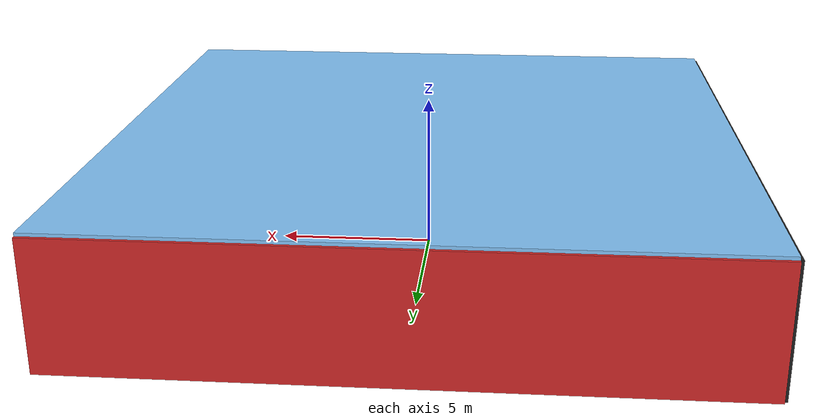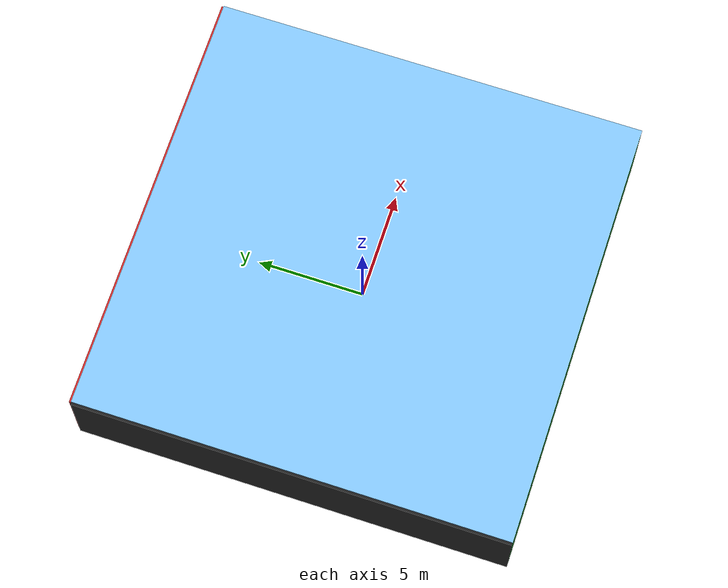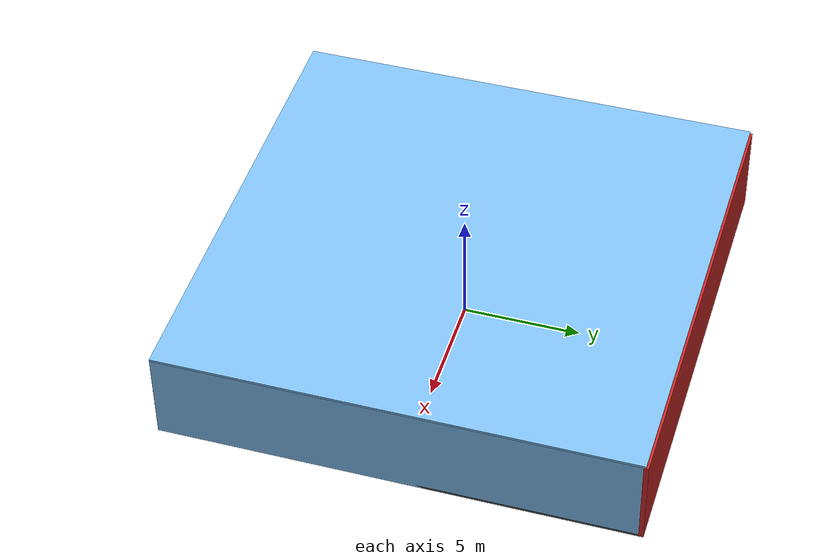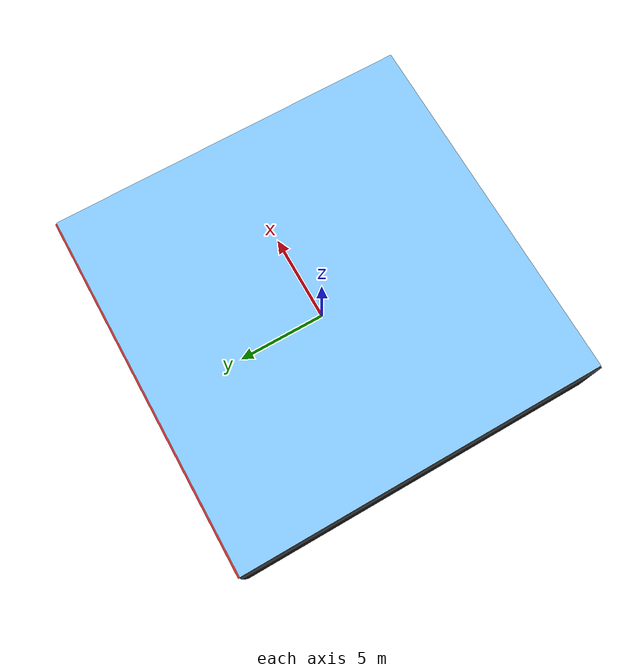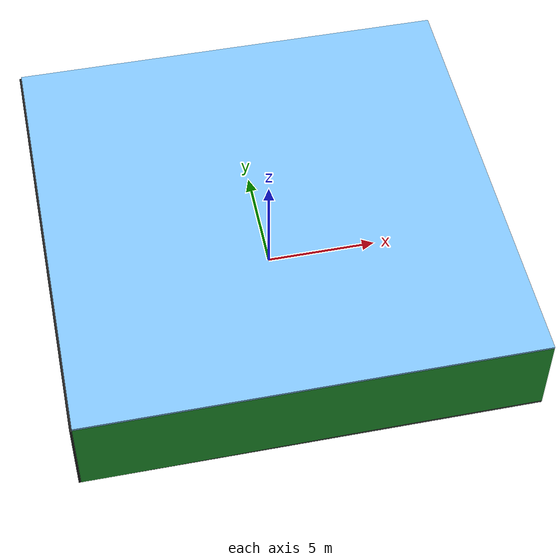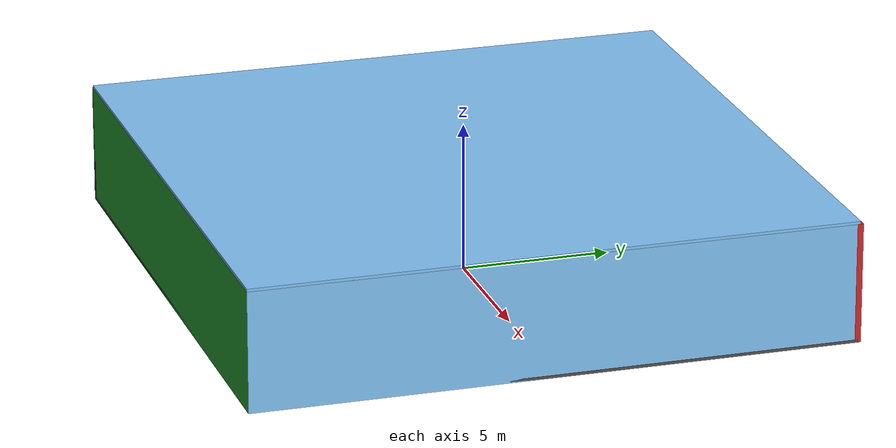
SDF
<sdf version="1.4">
 <world name="default">
  <physics type="ode">
   <max_step_size>0.001</max_step_size>
   <real_time_factor>1</real_time_factor>
   <real_time_update_rate>1000</real_time_update_rate>
   <gravity>0 0 -9.8</gravity>
  </physics>
  <scene><ambient>0.4 0.4 0.4 1</ambient><background>0.7 0.7 0.7 1</background><shadows>1</shadows></scene>
  <model name="Surrounding">
   <static>1</static>
   <link name="Ceiling">
    <collision name="Ceiling_Collision"><geometry><box><size>20 20 0.1</size></box></geometry></collision>
    <visual name="Ceiling_Visual">
     <geometry><box><size>20 20 0.1</size></box></geometry>
     <material>
      <script><uri>file://media/materials/scripts/gazebo.material</uri><name>Gazebo/SkyBlue</name></script>
     </material>
    </visual>
    <pose>0 0 4.05 0 0 0</pose>
   </link>
   <link name="Wall_South">
    <collision name="Wall_South_Collision">
     <geometry><box><size>20 0 4</size></box></geometry>
     <pose>0 0 2 0 -0 0</pose>
    </collision>
    <visual name="Wall_South_Visual">
     <pose>0 0 2 0 -0 0</pose>
     <geometry><box><size>20 0 4</size></box></geometry>
     <material>
      <script><uri>file://media/materials/scripts/gazebo.material</uri><name>Gazebo/GreenGlow</name></script>
     </material>
    </visual>
    <velocity_decay><linear>0</linear><angular>0</angular></velocity_decay>
    <pose>0 -10 0 0 -0 0</pose>
   </link>
   <link name="Wall_East">
    <collision name="Wall_21_Collision">
     <geometry><box><size>20 0 4</size></box></geometry>
     <pose>0 0 2 0 -0 0</pose>
    </collision>
    <visual name="Wall_21_Visual">
     <pose>0 0 2 0 -0 0</pose>
     <geometry><box><size>20 0 4</size></box></geometry>
     <material>
      <script><uri>file://media/materials/scripts/gazebo.material</uri><name>Gazebo/SkyBlue</name></script>
     </material>
    </visual>
    <velocity_decay><linear>0</linear><angular>0</angular></velocity_decay>
    <pose>10 0 0 0 -0 1.5708</pose>
   </link>
   <link name="Wall_North">
    <collision name="Wall_22_Collision">
     <geometry><box><size>20 0.2 4</size></box></geometry>
     <pose>0 0 2 0 -0 0</pose>
    </collision>
    <visual name="Wall_22_Visual">
     <pose>0 0 2 0 -0 0</pose>
     <geometry><box><size>20 0.2 4</size></box></geometry>
     <material>
      <script><uri>file://media/materials/scripts/gazebo.material</uri><name>Gazebo/RedBright</name></script>
     </material>
    </visual>
    <velocity_decay><linear>0</linear><angular>0</angular></velocity_decay>
    <pose>0 10 0 0 -0 0</pose>
   </link>
   <link name="Wall_West">
    <collision name="Wall_23_Collision">
     <geometry><box><size>20 0.2 4</size></box></geometry>
     <pose>0 0 2 0 -0 0</pose>
    </collision>
    <visual name="Wall_23_Visual">
     <pose>0 0 2 0 -0 0</pose>
     <geometry><box><size>20 0.2 4</size></box></geometry>
     <material>
      <script><uri>file://media/materials/scripts/gazebo.material</uri><name>Gazebo/Black</name></script>
     </material>
    </visual>
    <velocity_decay><linear>0</linear><angular>0</angular></velocity_decay>
    <pose>-10 0 0 0 0 -1.5708</pose>
   </link>
   <link name="Ground_link">
    <collision name="collision">
     <pose>0 0 .05 0 -0 0</pose>
     <geometry><box><size>20 20 0.1</size></box></geometry>
    </collision>
    <visual name="visual">
     <pose>0 0 .05 0 -0 0</pose>
     <geometry><box><size>20 20 0.1</size></box></geometry>
     <material>
      <script><uri>file://media/materials/scripts/gazebo.material</uri><name>Gazebo/Road</name></script>
     </material>
    </visual>
   </link>
   <static>1</static>
  </model>
  <spherical_coordinates>
   <surface_model>EARTH_WGS84</surface_model>
   <latitude_deg>0</latitude_deg>
   <longitude_deg>0</longitude_deg>
   <elevation>0</elevation>
   <heading_deg>0</heading_deg>
  </spherical_coordinates>
  <light name="lightball_0" type="diffuse">
   <diffuse>0.8 0.8 0.8 1</diffuse>
   <specular>0.2 0.2 0.2 1</specular>
   <attenuation>
    <range>100</range>
    <constant>0.7</constant>
    <linear>0.01</linear>
    <quadratic>0.001</quadratic>
   </attenuation>
   <direction>-0.5 0.1 -0.9</direction>
   <pose>8.66477757867 4.49002189806 1.59334359752 0 0 0</pose>
  </light>
  <light name="lightball_1" type="diffuse">
   <diffuse>0.8 0.8 0.8 1</diffuse>
   <specular>0.2 0.2 0.2 1</specular>
   <attenuation>
    <range>100</range>
    <constant>0.7</constant>
    <linear>0.01</linear>
    <quadratic>0.001</quadratic>
   </attenuation>
   <direction>-0.5 0.1 -0.9</direction>
   <pose>-8.80128884015 -2.60408792944 1.3949510449 0 0 0</pose>
  </light>
  <light name="lightball_2" type="diffuse">
   <diffuse>0.8 0.8 0.8 1</diffuse>
   <specular>0.2 0.2 0.2 1</specular>
   <attenuation>
    <range>100</range>
    <constant>0.7</constant>
    <linear>0.01</linear>
    <quadratic>0.001</quadratic>
   </attenuation>
   <direction>-0.5 0.1 -0.9</direction>
   <pose>0.635002847002 -3.58619692676 3.77834977513 0 0 0</pose>
  </light>
  <light name="lightball_3" type="diffuse">
   <diffuse>0.8 0.8 0.8 1</diffuse>
   <specular>0.2 0.2 0.2 1</specular>
   <attenuation>
    <range>100</range>
    <constant>0.7</constant>
    <linear>0.01</linear>
    <quadratic>0.001</quadratic>
   </attenuation>
   <direction>-0.5 0.1 -0.9</direction>
   <pose>8.47982866865 -1.56188415961 2.67949366813 0 0 0</pose>
  </light>
  <light name="lightball_4" type="diffuse">
   <diffuse>0.8 0.8 0.8 1</diffuse>
   <specular>0.2 0.2 0.2 1</specular>
   <attenuation>
    <range>100</range>
    <constant>0.7</constant>
    <linear>0.01</linear>
    <quadratic>0.001</quadratic>
   </attenuation>
   <direction>-0.5 0.1 -0.9</direction>
   <pose>3.97777497971 1.67898152116 3.58629596635 0 0 0</pose>
  </light>
  <light name="lightball_5" type="diffuse">
   <diffuse>0.8 0.8 0.8 1</diffuse>
   <specular>0.2 0.2 0.2 1</specular>
   <attenuation>
    <range>100</range>
    <constant>0.7</constant>
    <linear>0.01</linear>
    <quadratic>0.001</quadratic>
   </attenuation>
   <direction>-0.5 0.1 -0.9</direction>
   <pose>2.31138810617 6.59077415532 0.84189235493 0 0 0</pose>
  </light>
  <light name="lightball_6" type="diffuse">
   <diffuse>0.8 0.8 0.8 1</diffuse>
   <specular>0.2 0.2 0.2 1</specular>
   <attenuation>
    <range>100</range>
    <constant>0.7</constant>
    <linear>0.01</linear>
    <quadratic>0.001</quadratic>
   </attenuation>
   <direction>-0.5 0.1 -0.9</direction>
   <pose>-5.28440467152 -4.86841858701 1.4087491817 0 0 0</pose>
  </light>
  <light name="lightball_7" type="diffuse">
   <diffuse>0.8 0.8 0.8 1</diffuse>
   <specular>0.2 0.2 0.2 1</specular>
   <attenuation>
    <range>100</range>
    <constant>0.7</constant>
    <linear>0.01</linear>
    <quadratic>0.001</quadratic>
   </attenuation>
   <direction>-0.5 0.1 -0.9</direction>
   <pose>-9.65919451859 4.09240532441 2.31749355051 0 0 0</pose>
  </light>
  <light name="lightball_8" type="diffuse">
   <diffuse>0.8 0.8 0.8 1</diffuse>
   <specular>0.2 0.2 0.2 1</specular>
   <attenuation>
    <range>100</range>
    <constant>0.7</constant>
    <linear>0.01</linear>
    <quadratic>0.001</quadratic>
   </attenuation>
   <direction>-0.5 0.1 -0.9</direction>
   <pose>3.87734977742 3.13683287909 1.821697488 0 0 0</pose>
  </light>
  <light name="lightball_9" type="diffuse">
   <diffuse>0.8 0.8 0.8 1</diffuse>
   <specular>0.2 0.2 0.2 1</specular>
   <attenuation>
    <range>100</range>
    <constant>0.7</constant>
    <linear>0.01</linear>
    <quadratic>0.001</quadratic>
   </attenuation>
   <direction>-0.5 0.1 -0.9</direction>
   <pose>-0.314725952803 -5.16663846997 1.83191932812 0 0 0</pose>
  </light>
  <light name="lightball_10" type="diffuse">
   <diffuse>0.8 0.8 0.8 1</diffuse>
   <specular>0.2 0.2 0.2 1</specular>
   <attenuation>
    <range>100</range>
    <constant>0.7</constant>
    <linear>0.01</linear>
    <quadratic>0.001</quadratic>
   </attenuation>
   <direction>-0.5 0.1 -0.9</direction>
   <pose>-9.23263662498 7.54810407807 1.6139399122 0 0 0</pose>
  </light>
  <light name="lightball_11" type="diffuse">
   <diffuse>0.8 0.8 0.8 1</diffuse>
   <specular>0.2 0.2 0.2 1</specular>
   <attenuation>
    <range>100</range>
    <constant>0.7</constant>
    <linear>0.01</linear>
    <quadratic>0.001</quadratic>
   </attenuation>
   <direction>-0.5 0.1 -0.9</direction>
   <pose>-9.9096915602 -1.93758468676 1.50700799879 0 0 0</pose>
  </light>
  <light name="lightball_12" type="diffuse">
   <diffuse>0.8 0.8 0.8 1</diffuse>
   <specular>0.2 0.2 0.2 1</specular>
   <attenuation>
    <range>100</range>
    <constant>0.7</constant>
    <linear>0.01</linear>
    <quadratic>0.001</quadratic>
   </attenuation>
   <direction>-0.5 0.1 -0.9</direction>
   <pose>1.51515184141 3.31972786706 2.94860703997 0 0 0</pose>
  </light>
  <include><uri>model://cabinet</uri><pose>-6.73527787504 -3.53269835658 0 0 0 0.973799366609</pose></include>
  <include>
   <uri>model://textured_shapes</uri>
   <pose>-4.5656708847 -1.03813384997 0 0 0 1.4242244781</pose>
  </include>
  <include>
   <uri>model://robocup_3Dsim_goal</uri>
   <pose>6.37877300115 -6.82722263219 0 0 0 0.462457481492</pose>
  </include>
 </world>
</sdf>

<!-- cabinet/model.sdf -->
<sdf version="1.5">
  <model name="cabinet">
    <static>true</static>
    <link name="cabinet_bottom_plate">
      <inertial>
        <pose>0 0 -1 0 0 0</pose>
        <inertia>
          <ixx>2.050000</ixx>
          <ixy>0</ixy>
          <ixz>0</ixz>
          <iyy>2.050000</iyy>
          <iyz>0</iyz>
          <izz>2.050000</izz>
        </inertia>
        <mass>25.000000</mass>
      </inertial>
      <collision name="cabinet_bottom_plate_geom">
        <pose>0 0 0.010000 0 0 0</pose>
        <geometry>
          <box>
            <size>0.450000 0.450000 0.020000</size>
          </box>
        </geometry>
      </collision>
      <visual name="cabinet_bottom_plate_geom_visual">
        <pose>0 0 0.010000 0 0 0</pose>
        <geometry>
          <box>
            <size>0.450000 0.450000 0.020000</size>
          </box>
        </geometry>
        <material>
          <script>
            <uri>model://media/materials/scripts/gazebo.material</uri>
            <name>Gazebo/Wood</name>
          </script>
        </material>
      </visual>
      <collision name="cabinet_bottom_plate_geom_cabinet_back_plate">
        <pose>0.235000 0 0.510000 0 0 0</pose>
        <geometry>
          <box>
            <size>0.020000 0.450000 1.020000</size>
          </box>
        </geometry>
      </collision>
      <visual name="cabinet_bottom_plate_geom_cabinet_back_plate_visual">
        <pose>0.235000 0 0.510000 0 0 0</pose>
        <geometry>
          <box>
            <size>0.020000 0.450000 1.020000</size>
          </box>
        </geometry>
        <material>
          <script>
            <uri>model://media/materials/scripts/gazebo.material</uri>
            <name>Gazebo/Wood</name>
          </script>
        </material>
      </visual>
      <collision name="cabinet_bottom_plate_geom_cabinet_left_plate">
        <pose>0 0.235000 0.510000 0 0 0</pose>
        <geometry>
          <box>
            <size>0.450000 0.020000 1.020000</size>
          </box>
        </geometry>
      </collision>
      <visual name="cabinet_bottom_plate_geom_cabinet_left_plate_visual">
        <pose>0 0.235000 0.510000 0 0 0</pose>
        <geometry>
          <box>
            <size>0.450000 0.020000 1.020000</size>
          </box>
        </geometry>
        <material>
          <script>
            <uri>model://media/materials/scripts/gazebo.material</uri>
            <name>Gazebo/Wood</name>
          </script>
        </material>
      </visual>
      <collision name="cabinet_bottom_plate_geom_cabinet_middle_plate">
        <pose>0 0 0.510000 0 0 0</pose>
        <geometry>
          <box>
            <size>0.450000 0.450000 0.020000</size>
          </box>
        </geometry>
      </collision>
      <visual name="cabinet_bottom_plate_geom_cabinet_middle_plate_visual">
        <pose>0 0 0.510000 0 0 0</pose>
        <geometry>
          <box>
            <size>0.450000 0.450000 0.020000</size>
          </box>
        </geometry>
        <material>
          <script>
            <uri>model://media/materials/scripts/gazebo.material</uri>
            <name>Gazebo/Wood</name>
          </script>
        </material>
      </visual>
      <collision name="cabinet_bottom_plate_geom_cabinet_right_plate">
        <pose>0 -0.235000 0.510000 0 0 0</pose>
        <geometry>
          <box>
            <size>0.450000 0.020000 1.020000</size>
          </box>
        </geometry>
      </collision>
      <visual name="cabinet_bottom_plate_geom_cabinet_right_plate_visual">
        <pose>0 -0.235000 0.510000 0 0 0</pose>
        <geometry>
          <box>
            <size>0.450000 0.020000 1.020000</size>
          </box>
        </geometry>
        <material>
          <script>
            <uri>model://media/materials/scripts/gazebo.material</uri>
            <name>Gazebo/Wood</name>
          </script>
        </material>
      </visual>
      <collision name="cabinet_bottom_plate_geom_cabinet_top_plate">
        <pose>0 0 1.010000 0 0 0</pose>
        <geometry>
          <box>
            <size>0.450000 0.450000 0.020000</size>
          </box>
        </geometry>
      </collision>
      <visual name="cabinet_bottom_plate_geom_cabinet_top_plate_visual">
        <pose>0 0 1.010000 0 0 0</pose>
        <geometry>
          <box>
            <size>0.450000 0.450000 0.020000</size>
          </box>
        </geometry>
        <material>
          <script>
            <uri>model://media/materials/scripts/gazebo.material</uri>
            <name>Gazebo/Wood</name>
          </script>
        </material>
      </visual>
    </link>
  </model>
</sdf>

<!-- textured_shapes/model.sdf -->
<sdf version="1.6">
  <model name="textured_shapes">
    <pose>0 0 0.5 0 0 0</pose>
    <link name="box">
      <pose>0 -1.5 0 0 0 0</pose>
      <collision name="collision">
        <geometry>
          <box>
            <size>1 1 1</size>
          </box>
        </geometry>
      </collision>
      <visual name="visual">
        <geometry>
          <box>
            <size>1 1 1</size>
          </box>
        </geometry>
        <material>
          <script>
            <uri>model://../model_source/models/textured_shapes/materials/scripts</uri>
            <uri>model://../model_source/models/textured_shapes/materials/textures</uri>
            <name>TexturedShape/Squares</name>
          </script>
        </material>
      </visual>
    </link>
    <link name="sphere">
      <collision name="collision">
        <geometry>
          <sphere>
            <radius>0.5</radius>
          </sphere>
        </geometry>
      </collision>
      <visual name="visual">
        <geometry>
          <sphere>
            <radius>0.5</radius>
          </sphere>
        </geometry>
        <material>
          <script>
            <uri>model://../model_source/models/textured_shapes/materials/scripts</uri>
            <uri>model://../model_source/models/textured_shapes/materials/textures</uri>
            <name>TexturedShape/Squares</name>
          </script>
        </material>
      </visual>
    </link>
    <link name="cylinder">
      <pose>0 1.5 0 0 0 0</pose>
      <collision name="collision">
        <geometry>
          <cylinder>
            <radius>0.5</radius>
            <length>1</length>
          </cylinder>
        </geometry>
      </collision>
      <visual name="visual">
        <geometry>
          <cylinder>
            <radius>0.5</radius>
            <length>1</length>
          </cylinder>
        </geometry>
        <material>
          <script>
            <uri>model://../model_source/models/textured_shapes/materials/scripts</uri>
            <uri>model://../model_source/models/textured_shapes/materials/textures</uri>
            <name>TexturedShape/Squares</name>
          </script>
        </material>
      </visual>
    </link>
  </model>
</sdf>

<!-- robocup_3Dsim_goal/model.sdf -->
<sdf version="1.5">
  <model name="robocup_3d_goal">
    <static>true</static>
    <link name="left_post">
      <pose>0 1.05 0.45 0 0 0</pose>
      <collision name="collision">
        <geometry>
          <cylinder>
            <radius>0.05</radius>
            <length>0.9</length>
          </cylinder>
        </geometry>
      </collision>
      <visual name="visual">
        <geometry>
          <cylinder>
            <radius>0.05</radius>
            <length>0.9</length>
          </cylinder>
        </geometry>
        <material>
          <script>
            <uri>file://media/materials/scripts/gazebo.material</uri>
            <name>Gazebo/ZincYellow</name>
          </script>
        </material>
      </visual>
    </link>
    <link name="left_support_horiz_lower">
      <pose>0.30 1.05 0.01 0 0 0</pose>
      <collision name="collision">
        <geometry>
          <box>
            <size>0.50 0.02 0.02</size>
          </box>
        </geometry>
      </collision>
      <visual name="visual">
        <geometry>
          <box>
            <size>0.50 0.02 0.02</size>
          </box>
        </geometry>
        <material>
          <script>
            <uri>file://media/materials/scripts/gazebo.material</uri>
            <name>Gazebo/White</name>
          </script>
        </material>
      </visual>
    </link>
    <link name="left_support_horiz_upper">
      <pose>0.30 1.05 0.79 0 0 0</pose>
      <collision name="collision">
        <geometry>
          <box>
            <size>0.50 0.02 0.02</size>
          </box>
        </geometry>
      </collision>
      <visual name="visual">
        <geometry>
          <box>
            <size>0.50 0.02 0.02</size>
          </box>
        </geometry>
        <material>
          <script>
            <uri>file://media/materials/scripts/gazebo.material</uri>
            <name>Gazebo/White</name>
          </script>
        </material>
      </visual>
    </link>
    <link name="left_support_vertical">
      <pose>0.56 1.05 0.4 0 1.5708 0</pose>
      <collision name="collision">
        <geometry>
          <box>
            <size>0.80 0.02 0.02</size>
          </box>
        </geometry>
      </collision>
      <visual name="visual">
        <geometry>
          <box>
            <size>0.80 0.02 0.02</size>
          </box>
        </geometry>
        <material>
          <script>
            <uri>file://media/materials/scripts/gazebo.material</uri>
            <name>Gazebo/White</name>
          </script>
        </material>
      </visual>
    </link>
    <link name="right_support_horiz_lower">
      <pose>0.30 -1.05 0.01 0 0 0</pose>
      <collision name="collision">
        <geometry>
          <box>
            <size>0.50 0.02 0.02</size>
          </box>
        </geometry>
      </collision>
      <visual name="visual">
        <geometry>
          <box>
            <size>0.50 0.02 0.02</size>
          </box>
        </geometry>
        <material>
          <script>
            <uri>file://media/materials/scripts/gazebo.material</uri>
            <name>Gazebo/White</name>
          </script>
        </material>
      </visual>
    </link>
    <link name="right_support_horiz_upper">
      <pose>0.30 -1.05 0.79 0 0 0</pose>
      <collision name="collision">
        <geometry>
          <box>
            <size>0.50 0.02 0.02</size>
          </box>
        </geometry>
      </collision>
      <visual name="visual">
        <geometry>
          <box>
            <size>0.50 0.02 0.02</size>
          </box>
        </geometry>
        <material>
          <script>
            <uri>file://media/materials/scripts/gazebo.material</uri>
            <name>Gazebo/White</name>
          </script>
        </material>
      </visual>
    </link>
    <link name="right_support_vertical">
      <pose>0.56 -1.05 0.4 0 1.5708 0</pose>
      <collision name="collision">
        <geometry>
          <box>
            <size>0.80 0.02 0.02</size>
          </box>
        </geometry>
      </collision>
      <visual name="visual">
        <geometry>
          <box>
            <size>0.80 0.02 0.02</size>
          </box>
        </geometry>
        <material>
          <script>
            <uri>file://media/materials/scripts/gazebo.material</uri>
            <name>Gazebo/White</name>
          </script>
        </material>
      </visual>
    </link>
    <link name="center_support_horiz_lower">
      <pose>0.56 0 0.01 0 1.5708 0</pose>
      <collision name="collision">
        <geometry>
          <box>
            <size>0.02 2.08 0.02</size>
          </box>
        </geometry>
      </collision>
      <visual name="visual">
        <geometry>
          <box>
            <size>0.02 2.08 0.02</size>
          </box>
        </geometry>
        <material>
          <script>
            <uri>file://media/materials/scripts/gazebo.material</uri>
            <name>Gazebo/White</name>
          </script>
        </material>
      </visual>
    </link>
    <link name="center_support_horiz_upper">
      <pose>0.56 0 0.79 0 1.5708 0</pose>
      <collision name="collision">
        <geometry>
          <box>
            <size>0.02 2.08 0.02</size>
          </box>
        </geometry>
      </collision>
      <visual name="visual">
        <geometry>
          <box>
            <size>0.02 2.08 0.02</size>
          </box>
        </geometry>
        <material>
          <script>
            <uri>file://media/materials/scripts/gazebo.material</uri>
            <name>Gazebo/White</name>
          </script>
        </material>
      </visual>
    </link>
    <link name="right_post">
      <pose>0 -1.05 0.45 0 0 0</pose>
      <collision name="collision">
        <geometry>
          <cylinder>
            <radius>0.05</radius>
            <length>0.9</length>
          </cylinder>
        </geometry>
      </collision>
      <visual name="visual">
        <geometry>
          <cylinder>
            <radius>0.05</radius>
            <length>0.9</length>
          </cylinder>
        </geometry>
        <material>
          <script>
            <uri>file://media/materials/scripts/gazebo.material</uri>
            <name>Gazebo/ZincYellow</name>
          </script>
        </material>
      </visual>
    </link>
    <link name="crossbar">
      <pose>0 0 0.85 1.57 1.57 0</pose>
      <collision name="collision">
        <geometry>
          <cylinder>
            <radius>0.05</radius>
            <length>2.0</length>
          </cylinder>
        </geometry>
      </collision>
      <visual name="visual">
        <geometry>
          <cylinder>
            <radius>0.05</radius>
            <length>2.0</length>
          </cylinder>
        </geometry>
        <material>
          <script>
            <uri>file://media/materials/scripts/gazebo.material</uri>
            <name>Gazebo/ZincYellow</name>
          </script>
        </material>
      </visual>
    </link>
    <link name="center_net">
      <pose>0.56 0 0.40 0 0 0</pose>
      <collision name="collision">
        <geometry>
          <box>
            <size>0.01 2.1 0.80</size>
          </box>
        </geometry>
      </collision>
      <visual name="visual">
        <geometry>
          <box>
            <size>0.01 2.1 0.80</size>
          </box>
        </geometry>
        <material>
          <script>
            <uri>model://../model_source/models/robocup09_spl_field/materials/scripts/</uri>
            <uri>model://../model_source/models/robocup09_spl_field/materials/textures/</uri>
            <name>RoboCup/Net</name>
          </script>
        </material>
      </visual>
    </link>
    <link name="left_net">
      <pose>0.30 1.05 0.40 0 0 0</pose>
      <collision name="collision">
        <geometry>
          <box>
            <size>0.50 0.01 0.76</size>
          </box>
        </geometry>
      </collision>
      <visual name="visual">
        <geometry>
          <box>
            <size>0.50 0.01 0.76</size>
          </box>
        </geometry>
        <material>
          <script>
            <uri>model://../model_source/models/robocup09_spl_field/materials/scripts/</uri>
            <uri>model://../model_source/models/robocup09_spl_field/materials/textures/</uri>
            <name>RoboCup/Net</name>
          </script>
        </material>
      </visual>
    </link>
    <link name="right_net">
      <pose>0.30 -1.05 0.40 0 0 0</pose>
      <collision name="collision">
        <geometry>
          <box>
            <size>0.50 0.01 0.76</size>
          </box>
        </geometry>
      </collision>
      <visual name="visual">
        <geometry>
          <box>
            <size>0.50 0.01 0.76</size>
          </box>
        </geometry>
        <material>
          <script>
            <uri>model://../model_source/models/robocup09_spl_field/materials/scripts/</uri>
            <uri>model://../model_source/models/robocup09_spl_field/materials/textures/</uri>
            <name>RoboCup/Net</name>
          </script>
        </material>
      </visual>
    </link>
  </model>
</sdf>
